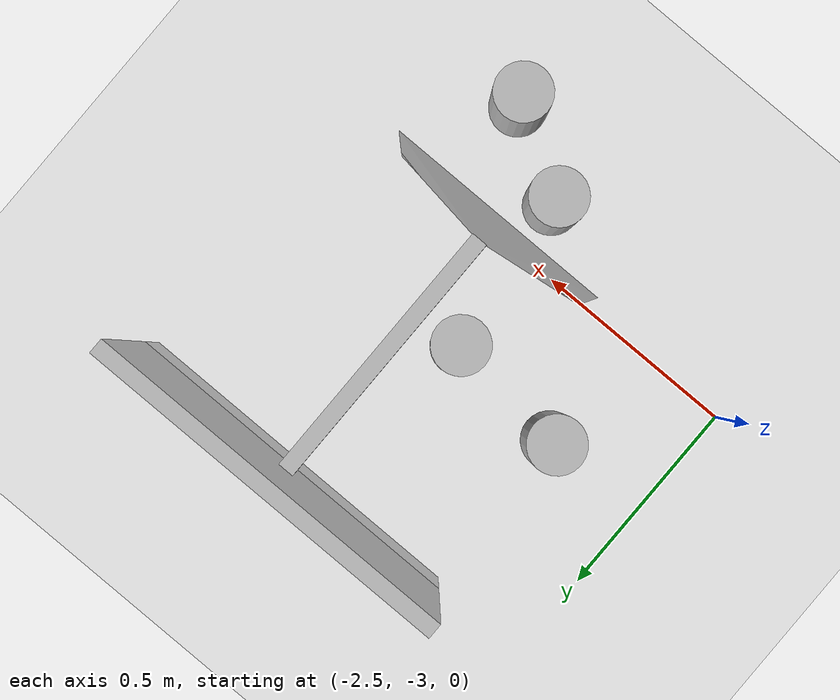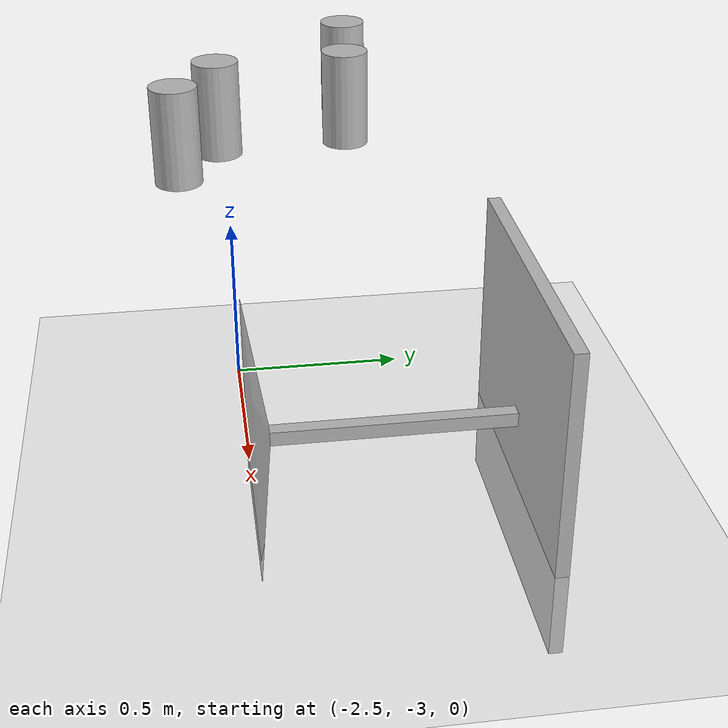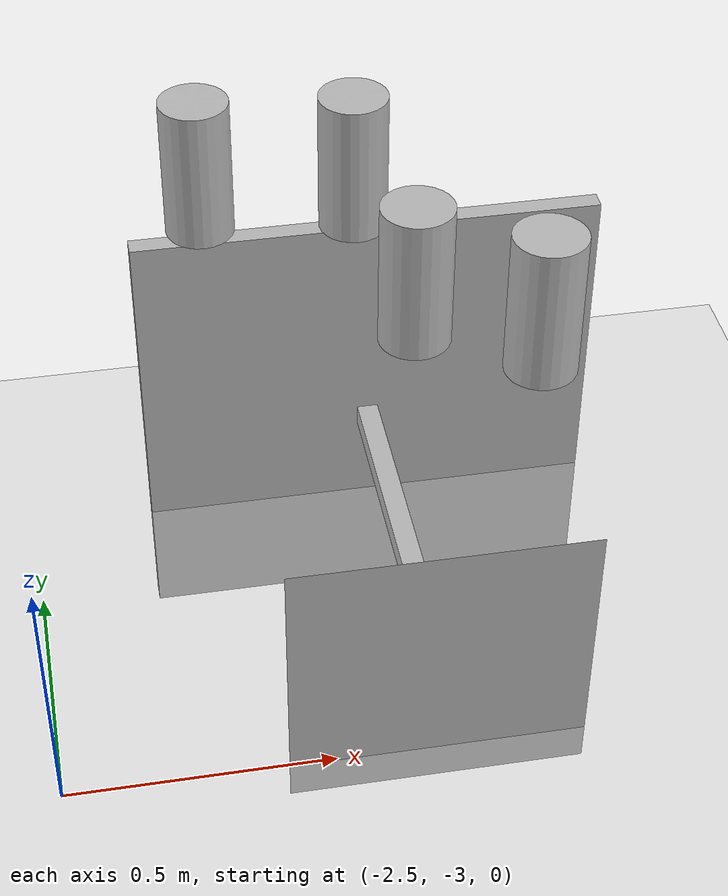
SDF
<sdf version="1.6">
 <world name="default">
  <light name="sun" type="directional">
   <pose>0 0 10 0 -0 0</pose>
   <diffuse>0.8 0.8 0.8 1</diffuse>
   <specular>0.1 0.1 0.1 1</specular>
   <attenuation>
    <range>1000</range>
    <constant>0.9</constant>
    <linear>0.01</linear>
    <quadratic>0.001</quadratic>
   </attenuation>
   <direction>-0.5 0.5 -1</direction>
  </light>
  <model name="ground_plane">
   <static>1</static>
   <link name="link">
    <collision name="collision">
     <geometry><plane><normal>0 0 1</normal><size>100 100</size></plane></geometry>
     <surface><friction><ode><mu>100</mu><mu2>50</mu2></ode></friction></surface>
    </collision>
    <visual name="visual">
     <cast_shadows>0</cast_shadows>
     <geometry><plane><normal>0 0 1</normal><size>100 100</size></plane></geometry>
     <material><script><uri>/worlds/gazebo.material</uri><name>Gazebo/Grey</name></script></material>
    </visual>
   </link>
  </model>
  <gravity>0 0 -9.8</gravity>
  <magnetic_field>6e-06 2.3e-05 -4.2e-05</magnetic_field>
  <atmosphere type="adiabatic"/>
  <physics name="default_physics" default="0" type="ode">
   <max_step_size>0.001</max_step_size>
   <real_time_factor>1</real_time_factor>
   <real_time_update_rate>1000</real_time_update_rate>
  </physics>
  <scene><ambient>0.4 0.4 0.4 1</ambient><background>0.7 0.7 0.7 1</background><shadows>1</shadows></scene>
  <spherical_coordinates>
   <surface_model>EARTH_WGS84</surface_model>
   <latitude_deg>0</latitude_deg>
   <longitude_deg>0</longitude_deg>
   <elevation>0</elevation>
   <heading_deg>0</heading_deg>
  </spherical_coordinates>
  <model name="cafe_table">
   <static>1</static>
   <link name="link">
    <collision name="surface">
     <pose>0 0 0.755 0 -0 0</pose>
     <geometry><box><size>0.913 0.913 0.04</size></box></geometry>
    </collision>
    <collision name="column">
     <pose>0 0 0.37 0 -0 0</pose>
     <geometry><box><size>0.042 0.042 0.74</size></box></geometry>
    </collision>
    <collision name="base">
     <pose>0 0 0.02 0 -0 0</pose>
     <geometry><box><size>0.56 0.56 0.04</size></box></geometry>
    </collision>
    <visual name="visual">
     <geometry><mesh><uri>/worlds/models/cafe_table/cafe_table.obj</uri><scale>1 1 1</scale></mesh></geometry>
    </visual>
   </link>
   <pose>-1.81298 -3.00096 0.197351 0 -0 0</pose>
  </model>
  <model name="beer">
   <link name="link">
    <pose>0 0 0.115 0 -0 0</pose>
    <inertial>
     <mass>0.39</mass>
     <inertia><ixx>0.00058</ixx><ixy>0</ixy><ixz>0</ixz><iyy>0.00058</iyy><iyz>0</iyz><izz>0.00019</izz></inertia>
    </inertial>
    <collision name="collision">
     <geometry><cylinder><radius>0.055</radius><length>0.23</length></cylinder></geometry>
    </collision>
    <visual name="visual">
     <geometry><cylinder><radius>0.055</radius><length>0.23</length></cylinder></geometry>
     <material>
      <script>
       <uri>/worlds/models/beer/materials/scripts</uri>
       <uri>/worlds/models/beer/materials/textures</uri>
       <name>Beer/Diffuse</name>
      </script>
     </material>
    </visual>
   </link>
   <pose>-1.72203 -3.13748 0.972355 1.4e-05 7.2e-05 0.002469</pose>
  </model>
  <model name="beer_0">
   <link name="link">
    <pose>0 0 0.115 0 -0 0</pose>
    <inertial>
     <mass>0.39</mass>
     <inertia><ixx>0.00058</ixx><ixy>0</ixy><ixz>0</ixz><iyy>0.00058</iyy><iyz>0</iyz><izz>0.00019</izz></inertia>
    </inertial>
    <collision name="collision">
     <geometry><cylinder><radius>0.055</radius><length>0.23</length></cylinder></geometry>
    </collision>
    <visual name="visual">
     <geometry><cylinder><radius>0.055</radius><length>0.23</length></cylinder></geometry>
     <material>
      <script>
       <uri>/worlds/models/beer/materials/scripts</uri>
       <uri>/worlds/models/beer/materials/textures</uri>
       <name>Beer/Diffuse</name>
      </script>
     </material>
    </visual>
   </link>
   <pose>-1.92492 -2.72616 0.972343 2e-06 2.7e-05 0.008058</pose>
  </model>
  <model name="beer_1">
   <link name="link">
    <pose>0 0 0.115 0 -0 0</pose>
    <inertial>
     <mass>0.39</mass>
     <inertia><ixx>0.00058</ixx><ixy>0</ixy><ixz>0</ixz><iyy>0.00058</iyy><iyz>0</iyz><izz>0.00019</izz></inertia>
    </inertial>
    <collision name="collision">
     <geometry><cylinder><radius>0.055</radius><length>0.23</length></cylinder></geometry>
    </collision>
    <visual name="visual">
     <geometry><cylinder><radius>0.055</radius><length>0.23</length></cylinder></geometry>
     <material>
      <script>
       <uri>/worlds/models/beer/materials/scripts</uri>
       <uri>/worlds/models/beer/materials/textures</uri>
       <name>Beer/Diffuse</name>
      </script>
     </material>
    </visual>
   </link>
   <pose>-1.88846 -3.03719 0.972343 6e-06 1.9e-05 1.7513</pose>
  </model>
  <model name="beer_2">
   <link name="link">
    <pose>0 0 0.115 0 -0 0</pose>
    <inertial>
     <mass>0.39</mass>
     <inertia><ixx>0.00058</ixx><ixy>0</ixy><ixz>0</ixz><iyy>0.00058</iyy><iyz>0</iyz><izz>0.00019</izz></inertia>
    </inertial>
    <collision name="collision">
     <geometry><cylinder><radius>0.055</radius><length>0.23</length></cylinder></geometry>
    </collision>
    <visual name="visual">
     <geometry><cylinder><radius>0.055</radius><length>0.23</length></cylinder></geometry>
     <material>
      <script>
       <uri>/worlds/models/beer/materials/scripts</uri>
       <uri>/worlds/models/beer/materials/textures</uri>
       <name>Beer/Diffuse</name>
      </script>
     </material>
    </visual>
   </link>
   <pose>-2.16658 -2.70102 0.972343 -1e-06 2.7e-05 0.000161</pose>
  </model>
 </world>
</sdf>
